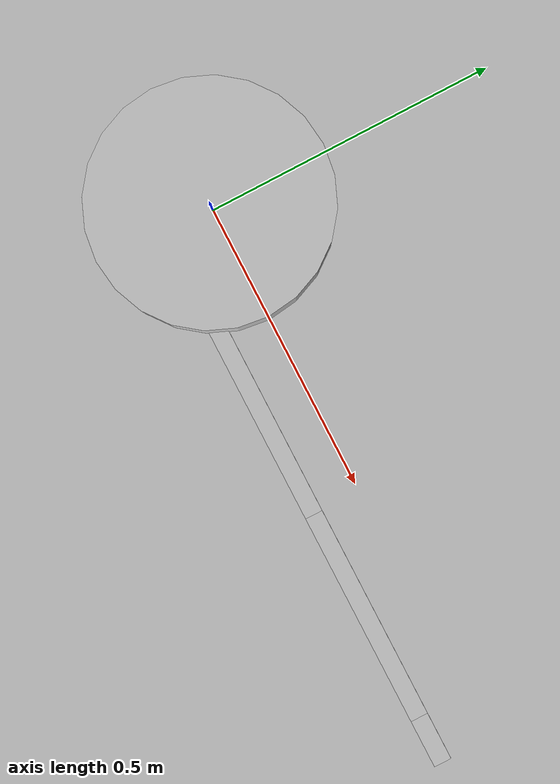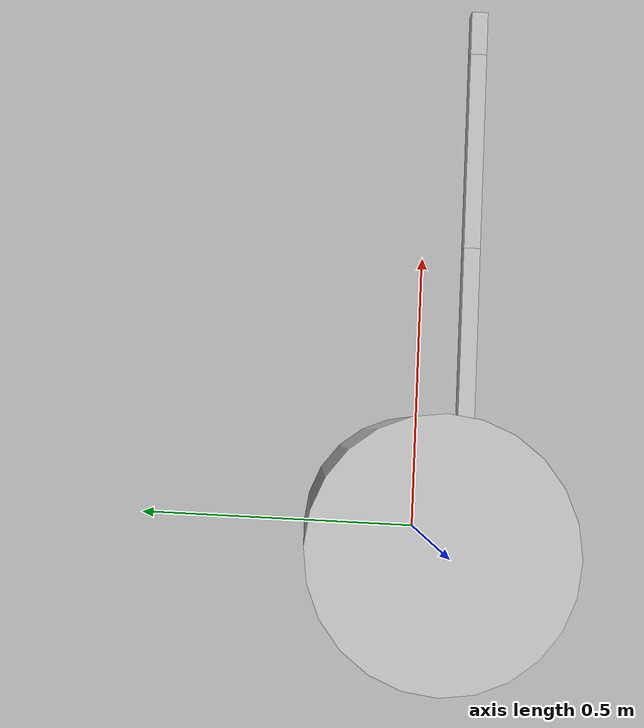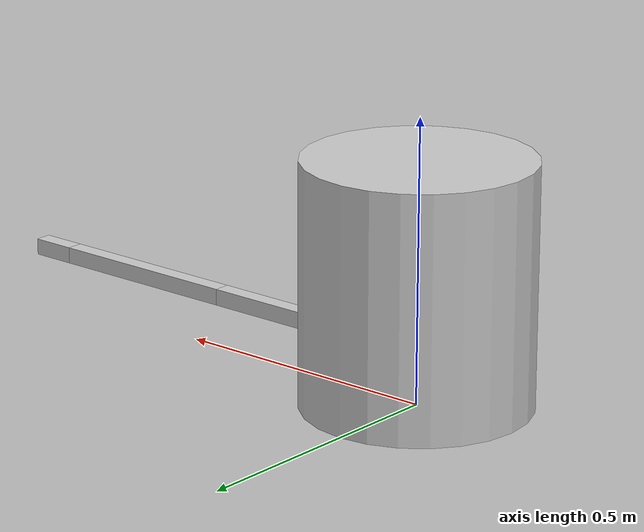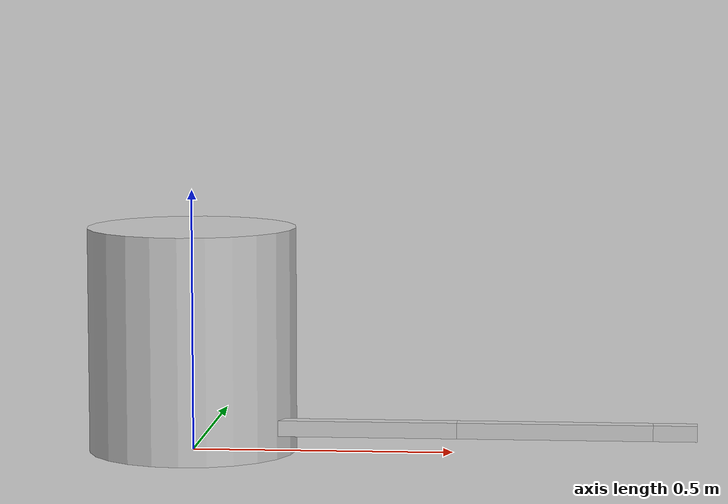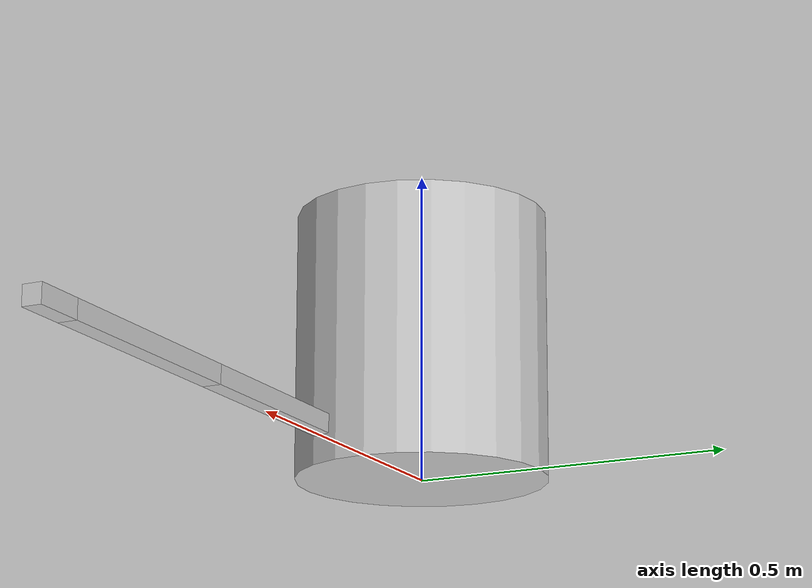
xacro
<?xml version="1.0"?>

<robot name="cepheus" xmlns:xacro="http://www.ros.org/wiki/xacro">
	<xacro:include filename="$(find cepheus_description)/urdf/cepheus.gazebo" />
	<xacro:include filename="$(find cepheus_description)/urdf/materials.xacro" />
	<xacro:include filename="$(find cepheus_description)/urdf/inertial_macros.xacro"/>
	<xacro:property name="camera_link" value="0.05" /> <!-- Size of square 'camera' box -->
	<xacro:property name="base_radius" value="0.2" />
	<xacro:property name="y" value="0.02" />
	<!-- gia sygkrish me simscape 29/7 -->
	<xacro:property name="arm_length" value="0.37" />
	<xacro:property name="forearm_length" value="0.368" />
	<xacro:property name="gripper_length" value="0.0822" />
	<xacro:property name="base_mass" value="53" />
	<xacro:property name="arm_mass" value="0.2314" />
	<xacro:property name="forearm_mass" value="0.1" />
	<xacro:property name="gripper_mass" value="0.046" />
	<xacro:property name="base_inertia" value="1.06" />
	<xacro:property name="arm_inertia" value="0.0026476" />
	<xacro:property name="forearm_inertia" value="0.0011318" />
	<xacro:property name="gripper_inertia" value="${2.73/100000}" />
	<xacro:property name="joint_damping" value="0" />
	<xacro:property name="joint_friction" value="0" />
	<xacro:property name="joint_limit" value="3.14" />
	<xacro:property name="joint_velocity" value="100000" />
	<xacro:property name="joint_effort" value="100000" />

	<!-- gia test epitagynshs: need fixing -->

	<link name="world">
	</link>

	<!-- extra links addition START -->
	<joint name="p1_joint" type="prismatic">
		<parent link="world"/>
		<child link="p1"/>
		<axis xyz="1 0 0"/>
		<limit lower="-100" upper="100" effort="${joint_effort}" velocity="${joint_velocity}"/>
		<dynamics damping="${joint_damping}" friction="${joint_friction}"/>
	</joint>
	<link name="p1">
		<inertial>
			<origin
				xyz="0.0 0.0 0.0"
				rpy="0.0 0.0 0.0" />
			<mass value="0.01" />
			<inertia
				ixx="1e-2"
				ixy="0.000001"
				ixz="0.000001"
				iyy="1e-2"
				iyz="0.000001"
				izz="1e-2" />
		</inertial>
	</link>
	<gazebo reference="p1">
		<mu1>0</mu1>
		<mu2>0</mu2>
	</gazebo>
	<transmission name="lin1">
		<type>transmission_interface/SimpleTransmission</type>
		<joint name="p1_joint">
			<hardwareInterface>hardware_interface/EffortJointInterface</hardwareInterface>
		</joint>
		<actuator name="lin_motor1">
			<hardwareInterface>hardware_interface/EffortJointInterface</hardwareInterface>
			<mechanicalReduction>1</mechanicalReduction>
		</actuator>
	</transmission>
	<joint name="p2_joint" type="prismatic">
		<parent link="p1"/>
		<child link="p2"/>
		<axis xyz="0 1 0"/>
		<limit
			lower="-100"
			upper="100"
			effort="${joint_effort}"
			velocity="${joint_velocity}"/>
		<dynamics
			damping="${joint_damping}"
			friction="${joint_friction}"/>
	</joint>
	<link name="p2">
		<inertial>
			<origin
				xyz="0.0 0.0 0.0"
				rpy="0.0 0.0 0.0" />
			<mass value="0.01" />
			<inertia
				ixx="1e-2"
				ixy="0.000001"
				ixz="0.000001"
				iyy="1e-2"
				iyz="0.000001"
				izz="1e-2" />
		</inertial>
		<surface>
			<friction>
				<ode>
					<mu>0</mu>
					<mu2>0</mu2>
					<fdir1>0 1.0 0</fdir1>
					<implicit_spring_damper>true</implicit_spring_damper>
				</ode>
			</friction>
		</surface>
	</link>
	<gazebo reference="p2">
		<mu1>0</mu1>
		<mu2>0</mu2>
	</gazebo>
	<transmission name="lin2">
		<type>transmission_interface/SimpleTransmission</type>
		<joint name="p2_joint">
			<hardwareInterface>hardware_interface/EffortJointInterface</hardwareInterface>
		</joint>
		<actuator name="lin_motor2">
			<hardwareInterface>hardware_interface/EffortJointInterface</hardwareInterface>
			<mechanicalReduction>1</mechanicalReduction>
		</actuator>
	</transmission>
	<joint name="r_joint" type="continuous">
		<axis xyz="0 0 1"/>
		<parent link="p2"/>
		<origin rpy="0 0 0" xyz="0 0 0"/>
		<child link="cepheus_base"/>
		<dynamics damping="${joint_damping}" friction="${joint_friction}"/>
	</joint>
	<transmission name="tran1">
		<type>
			transmission_interface/SimpleTransmission</type>
		<joint name="r_joint">
			<hardwareInterface>hardware_interface/EffortJointInterface</hardwareInterface>
		</joint>
		<actuator name="motor1">
			<hardwareInterface>hardware_interface/EffortJointInterface</hardwareInterface>
			<mechanicalReduction>1</mechanicalReduction>
		</actuator>
	</transmission>
	<!-- extra links addition END -->
	<link name="cepheus_base">
		<inertial>
			<origin xyz="0.0024 0.02937 0.15711" rpy="0 0 0" />
			<mass value="${base_mass}"/>
			<inertia
				ixx="0.000001"
				ixy="0.000001"
				ixz="0.000001"
				iyy="0.000001"
				iyz="0.000001"
				izz="${base_inertia}" />
		</inertial>
		<visual>
			<origin
				xyz="0 0 0.215"
				rpy="0 0 0" />
			<geometry>
				<cylinder length="0.43" radius="${base_radius}"/>
			</geometry>
			<material name="LightGrey"/>
		</visual>
		<collision>
			<origin
				xyz="0 0 0.215"
				rpy="0 0 0" />
			<geometry>
				<cylinder length="0.43" radius="${base_radius}"/>
			</geometry>
		</collision>
	</link>

	<gazebo reference="cepheus_base">
		<mu1>0</mu1>
		<mu2>0</mu2>
	</gazebo>
	<joint name="left_shoulder_joint" type="revolute">
		<origin
			xyz="0.1425 -0.08225 0.05875"
			rpy="0 0 0" />
		<parent link="cepheus_base" />
		<child link="left_arm" />
		<axis xyz="0 0 1" />
		<limit
			lower="${-joint_limit}"
			upper="${joint_limit}"
			effort="${joint_effort}"
			velocity="${joint_velocity}" />
		<dynamics
			damping="${joint_damping}"
			friction="${joint_friction}" />
	</joint>
	<link name="left_arm">
		<inertial>
			<origin
				xyz="${arm_length/2} 0 0"
				rpy="0 0 0" />
			<mass value="${arm_mass}" />
			<inertia
				ixx="0.000001"
				ixy="0.000001"
				ixz="0.000001"
				iyy="0.000001"
				iyz="0.000001"
				izz="${arm_inertia}" />
		</inertial>
		<visual>
			<origin
				xyz="${arm_length/2} 0 0"
				rpy="0 0 0" />
			<geometry>
				<box size="${arm_length} 0.03 0.03" />
			</geometry>
			<material name="LightGrey"/>
		</visual>
		<collision>
			<origin
				xyz="${arm_length/2} 0.0 0"
				rpy="0 0 0" />
			<geometry>
				<box size="${arm_length} 0.03 0.03"/>
			</geometry>
		</collision>
	</link>
	<transmission name="tran2">
		<type>transmission_interface/SimpleTransmission</type>
		<joint name="left_shoulder_joint">
			<hardwareInterface>hardware_interface/EffortJointInterface</hardwareInterface>
		</joint>
		<actuator name="motor2">
			<hardwareInterface>hardware_interface/EffortJointInterface</hardwareInterface>
			<mechanicalReduction>1</mechanicalReduction>
		</actuator>
	</transmission>
	<joint name="left_elbow_joint" type="revolute">
		<origin
			xyz="${arm_length} 0 0"
			rpy="0 0 0" />
		<parent link="left_arm" />
		<child link="left_forearm" />
		<axis xyz="0 0 1" />
		<limit
			lower="${-joint_limit}"
			upper="${joint_limit}"
			effort="${joint_effort}"
			velocity="${joint_velocity}" />
		<dynamics
			damping="${joint_damping}"
			friction="${joint_friction}" />
	</joint>
	<link name="left_forearm">
		<inertial>
			<origin
				xyz="${forearm_length/2} 0 0"
				rpy="0 0 0" />
			<mass value="${forearm_mass}" />
			<inertia
				ixx="0.000001"
				ixy="0.000001"
				ixz="0.000001"
				iyy="0.000001"
				iyz="0.000001"
				izz="${forearm_inertia}" />
		</inertial>
		<visual>
			<origin
				xyz="${forearm_length/2} 0 0"
				rpy="0 0 0" />
			<geometry>
				<box size="${forearm_length} 0.03 0.03"/>
			</geometry>
			<material name="LightGrey"/>
		</visual>
		<collision>
			<origin
				xyz="${forearm_length/2} 0 0"
				rpy="0 0 0" />
			<geometry>
				<box size="${forearm_length} 0.03 0.03"/>
			</geometry>
		</collision>
	</link>
	<transmission name="tran3">
		<type>transmission_interface/SimpleTransmission</type>
		<joint name="left_elbow_joint">
			<hardwareInterface>hardware_interface/EffortJointInterface</hardwareInterface>
		</joint>
		<actuator name="motor3">
			<hardwareInterface>hardware_interface/EffortJointInterface</hardwareInterface>
			<mechanicalReduction>1</mechanicalReduction>
		</actuator>
	</transmission>
	<joint name="left_wrist_joint" type="revolute">
		<origin
			xyz="${forearm_length} 0 0"
			rpy="0 0 0 " />
		<parent link="left_forearm" />
		<child link="left_grip" />
		<axis xyz="0 0 1" />
		<limit
			lower="${-joint_limit}"
			upper="${joint_limit}"
			effort="${joint_effort}"
			velocity="${joint_velocity}" />
		<dynamics
			damping="${joint_damping}"
			friction="${joint_friction}" />
	</joint>
	<link name="left_grip">
		<inertial>
			<origin
				xyz="${gripper_length/2} 0 0"
				rpy="0 0 0" />
			<mass value="${gripper_mass}" />
			<inertia
				ixx="0.000001"
				ixy="0.000001"
				ixz="0.000001"
				iyy="0.000001"
				iyz="0.000001"
				izz="${gripper_inertia}" />
		</inertial>
		<visual>
			<origin
				xyz="${gripper_length/2} 0 0"
				rpy="0 0 0" />
			<geometry>
				<box size="${gripper_length} 0.03 0.03"/>
			</geometry>
			<material name="LightGrey"/>
		</visual>
		<collision>
			<origin
				xyz="${gripper_length/2} 0 0"
				rpy="0 0 0" />
			<geometry>
				<box size="${gripper_length} 0.03 0.03"/>
			</geometry>
		</collision>
	</link>
	<joint name="final_joint" type="revolute">
		<parent link="left_grip"/>
		<child link="final_link"/>
		<origin
			xyz="${gripper_length} 0 0.03"
			rpy="0 0 0 " />
		<axis xyz="1 0 0"/>
		<limit lower="-1" upper="1" effort="${joint_effort}" velocity="${joint_velocity}"/>
		<dynamics damping="1" friction="1"/>
	</joint>
	<link name="final_link">
		<inertial>
			<origin
				xyz="0.0 0.0 0.0"
				rpy="0.0 0.0 0.0" />
			<mass value="0.0001" />
			<inertia
				ixx="1e-7"
				ixy="0.00001"
				ixz="0.00001"
				iyy="1e-7"
				iyz="0.00001"
				izz="1e-7" />
		</inertial>

	</link>

	<transmission name="tran4">
		<type>transmission_interface/SimpleTransmission</type>
		<joint name="left_wrist_joint">
			<hardwareInterface>hardware_interface/EffortJointInterface</hardwareInterface>
		</joint>
		<actuator name="motor4">
			<hardwareInterface>hardware_interface/EffortJointInterface</hardwareInterface>
			<mechanicalReduction>1</mechanicalReduction>
		</actuator>
	</transmission>
	<gazebo reference="left_wrist_joint">
		<provideFeedback>true</provideFeedback>
	</gazebo>
    <gazebo>
		<plugin name="ft_sensor" filename="libgazebo_ros_ft_sensor.so">
			<updateRate>0</updateRate>   <!--poly shmantiko na einai 0, allios kanei bug!!!!(nikhforos)-->
			<topicName>ft_sensor_topic</topicName>
			<jointName>left_wrist_joint</jointName>
			<noise>
          		<type>gaussian</type>
          		<mean>0.0</mean>
          		<stddev>0.0003</stddev> <!-- change this to simulate noise -->
        	</noise>
		</plugin>
	</gazebo>

	<gazebo reference="left_grip">
		<gravity>false</gravity>
		<sensor name="imu_sensor" type="imu">
			<always_on>true</always_on>
			<update_rate>100</update_rate>
			<visualize>true</visualize>
			<topic>imu_sensor_topic</topic>
			<plugin filename="libgazebo_ros_imu_sensor.so" name="imu_plugin">
				<topicName>imu</topicName>
				<bodyName>left_grip</bodyName>
				<updateRateHZ>10.0</updateRateHZ>
				<gaussianNoise>0.0</gaussianNoise>
				<xyzOffset>0 0 0</xyzOffset>
				<rpyOffset>0 0 0</rpyOffset>
				<frameName>left_grip</frameName>
				<initialOrientationAsReference>false</initialOrientationAsReference>
			</plugin>
		</sensor>
		<kp>1000000</kp>
		<kd>0</kd>
  </gazebo>
	<gazebo reference="left_wrist_joint">
		<provideFeedback>true</provideFeedback>
	</gazebo>
	<plugin name="ft_sensor" filename="libgazebo_ros_ft_sensor.so">
			<updateRate>0</updateRate>   <!--poly shmantiko na einai 0, allios kanei bug!!!!(nikhforos)-->
			<topicName>ft_sensor_topic</topicName>
			<jointName>left_wrist_joint</jointName>
			<noise>
          		<type>gaussian</type>
          		<mean>0.0</mean>
          		<stddev>0.003</stddev> <!-- change this to simulate noise -->
        	</noise>
	</plugin>

</robot>
